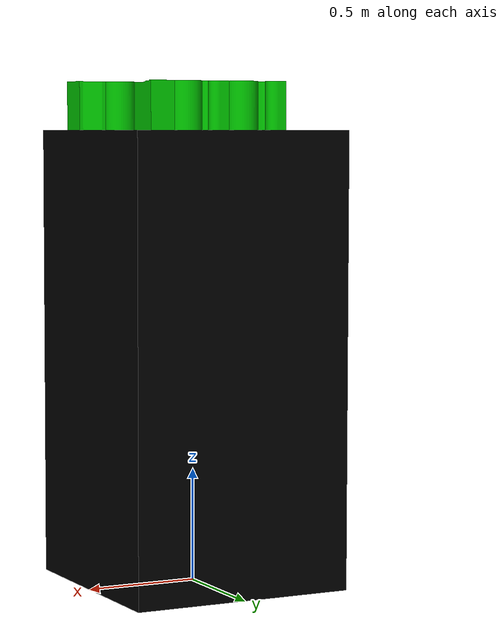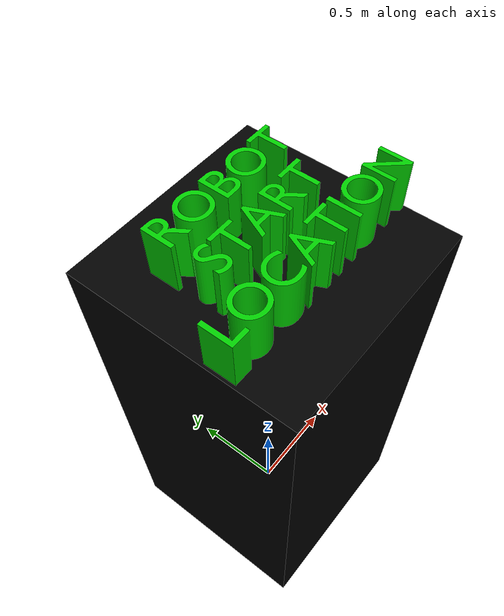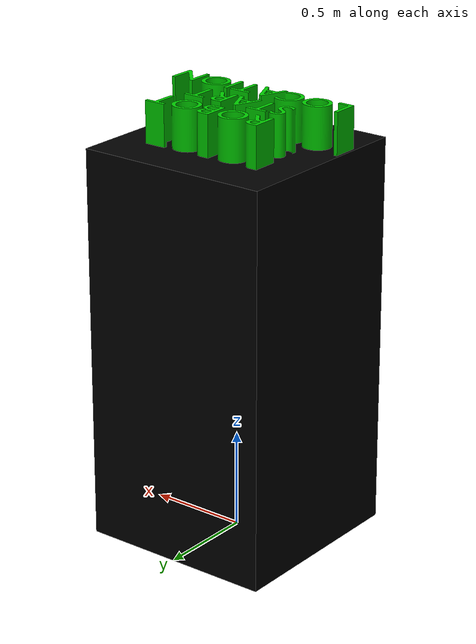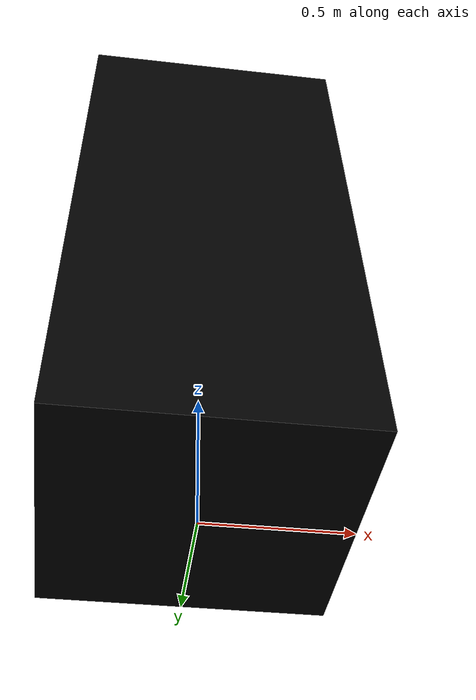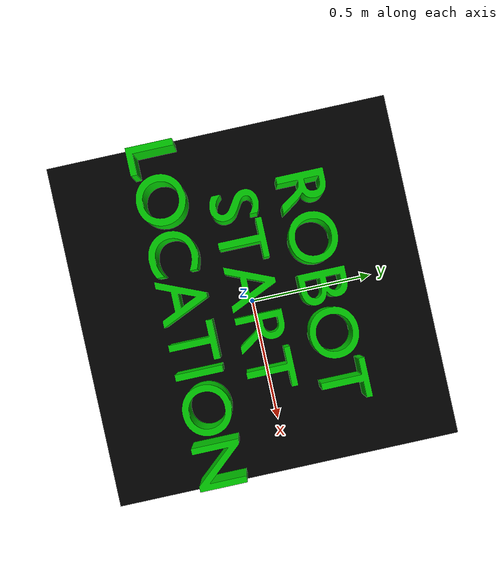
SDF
<?xml version="1.0" ?>
<sdf version="1.6">
  <model name="start pillar">
    <static>true</static>
    <link name="link">
      <collision name="collision">
        <geometry>
          <mesh>
            <scale>1 1 1</scale>
            <uri>model://start_pillar/meshes/start_pillar.stl</uri>
          </mesh>
           <surface>
            <friction>
              <ode>
                <mu>1.2</mu>
                <mu2>1.2</mu2>
              </ode>
            </friction>
          </surface>
        </geometry>
      </collision>
      <visual name="visual">
        <geometry>
          <mesh>
            <scale>1 1 1</scale>
            <uri>model://start_pillar/meshes/start_pillar.dae</uri>
          </mesh>
        </geometry>
      </visual>
    </link>
  </model>
</sdf>
